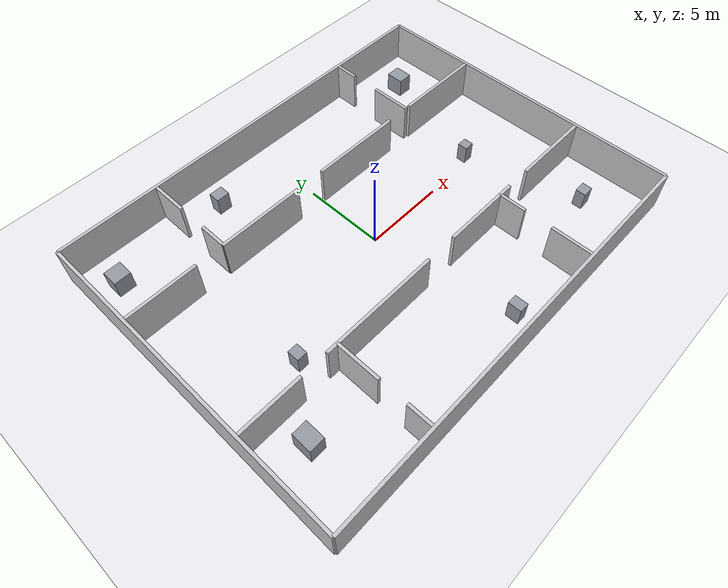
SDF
<?xml version="1.0"?>
<sdf version="1.9"><world name="new_room_world">
<plugin filename="gz-sim-physics-system" name="gz::sim::systems::Physics"/><plugin filename="gz-sim-user-commands-system" name="gz::sim::systems::UserCommands"/><plugin filename="gz-sim-scene-broadcaster-system" name="gz::sim::systems::SceneBroadcaster"/><plugin filename="gz-sim-sensors-system" name="gz::sim::systems::Sensors"><render_engine>ogre2</render_engine></plugin><plugin filename="gz-sim-imu-system" name="gz::sim::systems::Imu"/>
<physics name="new_room_realtime" type="ignored"><max_step_size>0.001</max_step_size><real_time_factor>1</real_time_factor></physics><gravity>0 0 -9.8</gravity><scene><ambient>0.85 0.85 0.87 1</ambient><background>0.68 0.68 0.71 1</background><shadows>false</shadows></scene><light name="sun" type="directional"><cast_shadows>false</cast_shadows><pose>0 0 10 0 0 0</pose><diffuse>0.95 0.95 0.95 1</diffuse><direction>-0.3 0.2 -1</direction></light>
<model name="new_room_ground"><static>true</static><link name="ground_link"><collision name="ground_collision"><geometry><plane><normal>0 0 1</normal><size>40 32</size></plane></geometry></collision><visual name="ground_visual"><geometry><plane><normal>0 0 1</normal><size>40 32</size></plane></geometry><material><ambient>0.92 0.92 0.94 1</ambient><diffuse>0.92 0.92 0.94 1</diffuse></material></visual></link></model>
<model name="mini_hospital_structure"><static>true</static><link name="structure">
<collision name="mx048_c000"><pose>0 10 1.25 0 0 0</pose><geometry><box><size>26 0.18 2.5</size></box></geometry></collision><visual name="mx048_v000"><pose>0 10 1.25 0 0 0</pose><geometry><box><size>26 0.18 2.5</size></box></geometry><material><ambient>0.78 0.78 0.80 1</ambient><diffuse>0.78 0.78 0.80 1</diffuse></material></visual>
<collision name="mx048_c001"><pose>0 -10 1.25 0 0 0</pose><geometry><box><size>26 0.18 2.5</size></box></geometry></collision><visual name="mx048_v001"><pose>0 -10 1.25 0 0 0</pose><geometry><box><size>26 0.18 2.5</size></box></geometry><material><ambient>0.78 0.78 0.80 1</ambient><diffuse>0.78 0.78 0.80 1</diffuse></material></visual>
<collision name="mx048_c002"><pose>-13 0 1.25 0 0 0</pose><geometry><box><size>0.18 20 2.5</size></box></geometry></collision><visual name="mx048_v002"><pose>-13 0 1.25 0 0 0</pose><geometry><box><size>0.18 20 2.5</size></box></geometry><material><ambient>0.78 0.78 0.80 1</ambient><diffuse>0.78 0.78 0.80 1</diffuse></material></visual>
<collision name="mx048_c003"><pose>13 0 1.25 0 0 0</pose><geometry><box><size>0.18 20 2.5</size></box></geometry></collision><visual name="mx048_v003"><pose>13 0 1.25 0 0 0</pose><geometry><box><size>0.18 20 2.5</size></box></geometry><material><ambient>0.78 0.78 0.80 1</ambient><diffuse>0.78 0.78 0.80 1</diffuse></material></visual>
<collision name="mx048_c004"><pose>-10.78 4.2 1.25 0 0 0</pose><geometry><box><size>4.26 0.18 2.5</size></box></geometry></collision><visual name="mx048_v004"><pose>-10.78 4.2 1.25 0 0 0</pose><geometry><box><size>4.26 0.18 2.5</size></box></geometry><material><ambient>0.78 0.78 0.80 1</ambient><diffuse>0.78 0.78 0.80 1</diffuse></material></visual>
<collision name="mx048_c005"><pose>-4.325 4.2 1.25 0 0 0</pose><geometry><box><size>5.25 0.18 2.5</size></box></geometry></collision><visual name="mx048_v005"><pose>-4.325 4.2 1.25 0 0 0</pose><geometry><box><size>5.25 0.18 2.5</size></box></geometry><material><ambient>0.78 0.78 0.80 1</ambient><diffuse>0.78 0.78 0.80 1</diffuse></material></visual>
<collision name="mx048_c006"><pose>2.925 4.2 1.25 0 0 0</pose><geometry><box><size>5.65 0.18 2.5</size></box></geometry></collision><visual name="mx048_v006"><pose>2.925 4.2 1.25 0 0 0</pose><geometry><box><size>5.65 0.18 2.5</size></box></geometry><material><ambient>0.78 0.78 0.80 1</ambient><diffuse>0.78 0.78 0.80 1</diffuse></material></visual>
<collision name="mx048_c007"><pose>10.18 4.2 1.25 0 0 0</pose><geometry><box><size>5.46 0.18 2.5</size></box></geometry></collision><visual name="mx048_v007"><pose>10.18 4.2 1.25 0 0 0</pose><geometry><box><size>5.46 0.18 2.5</size></box></geometry><material><ambient>0.78 0.78 0.80 1</ambient><diffuse>0.78 0.78 0.80 1</diffuse></material></visual>
<collision name="mx048_c008"><pose>-11.055 -4.1 1.25 0 0 0</pose><geometry><box><size>3.71 0.18 2.5</size></box></geometry></collision><visual name="mx048_v008"><pose>-11.055 -4.1 1.25 0 0 0</pose><geometry><box><size>3.71 0.18 2.5</size></box></geometry><material><ambient>0.78 0.78 0.80 1</ambient><diffuse>0.78 0.78 0.80 1</diffuse></material></visual>
<collision name="mx048_c009"><pose>-3.975 -4.1 1.25 0 0 0</pose><geometry><box><size>7.25 0.18 2.5</size></box></geometry></collision><visual name="mx048_v009"><pose>-3.975 -4.1 1.25 0 0 0</pose><geometry><box><size>7.25 0.18 2.5</size></box></geometry><material><ambient>0.78 0.78 0.80 1</ambient><diffuse>0.78 0.78 0.80 1</diffuse></material></visual>
<collision name="mx048_c010"><pose>4 -4.1 1.25 0 0 0</pose><geometry><box><size>4.9 0.18 2.5</size></box></geometry></collision><visual name="mx048_v010"><pose>4 -4.1 1.25 0 0 0</pose><geometry><box><size>4.9 0.18 2.5</size></box></geometry><material><ambient>0.78 0.78 0.80 1</ambient><diffuse>0.78 0.78 0.80 1</diffuse></material></visual>
<collision name="mx048_c011"><pose>10.43 -4.1 1.25 0 0 0</pose><geometry><box><size>4.96 0.18 2.5</size></box></geometry></collision><visual name="mx048_v011"><pose>10.43 -4.1 1.25 0 0 0</pose><geometry><box><size>4.96 0.18 2.5</size></box></geometry><material><ambient>0.78 0.78 0.80 1</ambient><diffuse>0.78 0.78 0.80 1</diffuse></material></visual>
<collision name="mx048_c012"><pose>-6.9 5.05 1.25 0 0 0</pose><geometry><box><size>0.18 1.7 2.5</size></box></geometry></collision><visual name="mx048_v012"><pose>-6.9 5.05 1.25 0 0 0</pose><geometry><box><size>0.18 1.7 2.5</size></box></geometry><material><ambient>0.78 0.78 0.80 1</ambient><diffuse>0.78 0.78 0.80 1</diffuse></material></visual>
<collision name="mx048_c013"><pose>-6.9 8.805 1.25 0 0 0</pose><geometry><box><size>0.18 2.21 2.5</size></box></geometry></collision><visual name="mx048_v013"><pose>-6.9 8.805 1.25 0 0 0</pose><geometry><box><size>0.18 2.21 2.5</size></box></geometry><material><ambient>0.78 0.78 0.80 1</ambient><diffuse>0.78 0.78 0.80 1</diffuse></material></visual>
<collision name="mx048_c014"><pose>7.2 5.45 1.25 0 0 0</pose><geometry><box><size>0.18 2.5 2.5</size></box></geometry></collision><visual name="mx048_v014"><pose>7.2 5.45 1.25 0 0 0</pose><geometry><box><size>0.18 2.5 2.5</size></box></geometry><material><ambient>0.78 0.78 0.80 1</ambient><diffuse>0.78 0.78 0.80 1</diffuse></material></visual>
<collision name="mx048_c015"><pose>7.2 9.205 1.25 0 0 0</pose><geometry><box><size>0.18 1.41 2.5</size></box></geometry></collision><visual name="mx048_v015"><pose>7.2 9.205 1.25 0 0 0</pose><geometry><box><size>0.18 1.41 2.5</size></box></geometry><material><ambient>0.78 0.78 0.80 1</ambient><diffuse>0.78 0.78 0.80 1</diffuse></material></visual>
<collision name="mx048_c016"><pose>-6.9 -9.18 1.25 0 0 0</pose><geometry><box><size>0.18 1.46 2.5</size></box></geometry></collision><visual name="mx048_v016"><pose>-6.9 -9.18 1.25 0 0 0</pose><geometry><box><size>0.18 1.46 2.5</size></box></geometry><material><ambient>0.78 0.78 0.80 1</ambient><diffuse>0.78 0.78 0.80 1</diffuse></material></visual>
<collision name="mx048_c017"><pose>-6.9 -5.425 1.25 0 0 0</pose><geometry><box><size>0.18 2.65 2.5</size></box></geometry></collision><visual name="mx048_v017"><pose>-6.9 -5.425 1.25 0 0 0</pose><geometry><box><size>0.18 2.65 2.5</size></box></geometry><material><ambient>0.78 0.78 0.80 1</ambient><diffuse>0.78 0.78 0.80 1</diffuse></material></visual>
<collision name="mx048_c018"><pose>5.6 -8.68 1.25 0 0 0</pose><geometry><box><size>0.18 2.46 2.5</size></box></geometry></collision><visual name="mx048_v018"><pose>5.6 -8.68 1.25 0 0 0</pose><geometry><box><size>0.18 2.46 2.5</size></box></geometry><material><ambient>0.78 0.78 0.80 1</ambient><diffuse>0.78 0.78 0.80 1</diffuse></material></visual>
<collision name="mx048_c019"><pose>5.6 -4.925 1.25 0 0 0</pose><geometry><box><size>0.18 1.65 2.5</size></box></geometry></collision><visual name="mx048_v019"><pose>5.6 -4.925 1.25 0 0 0</pose><geometry><box><size>0.18 1.65 2.5</size></box></geometry><material><ambient>0.78 0.78 0.80 1</ambient><diffuse>0.78 0.78 0.80 1</diffuse></material></visual>
<collision name="mx048_c020"><pose>-11.4 7.7 0.6 0 0 0</pose><geometry><box><size>1 1 1.2</size></box></geometry></collision><visual name="mx048_v020"><pose>-11.4 7.7 0.6 0 0 0</pose><geometry><box><size>1 1 1.2</size></box></geometry><material><ambient>0.58 0.60 0.64 1</ambient><diffuse>0.58 0.60 0.64 1</diffuse></material></visual>
<collision name="mx048_c021"><pose>-4.3 8.1 0.6 0 0 0</pose><geometry><box><size>0.8 0.7 1.2</size></box></geometry></collision><visual name="mx048_v021"><pose>-4.3 8.1 0.6 0 0 0</pose><geometry><box><size>0.8 0.7 1.2</size></box></geometry><material><ambient>0.58 0.60 0.64 1</ambient><diffuse>0.58 0.60 0.64 1</diffuse></material></visual>
<collision name="mx048_c022"><pose>10.4 7.6 0.6 0 0 0</pose><geometry><box><size>0.9 1.1 1.2</size></box></geometry></collision><visual name="mx048_v022"><pose>10.4 7.6 0.6 0 0 0</pose><geometry><box><size>0.9 1.1 1.2</size></box></geometry><material><ambient>0.58 0.60 0.64 1</ambient><diffuse>0.58 0.60 0.64 1</diffuse></material></visual>
<collision name="mx048_c023"><pose>-10.6 -5.9 0.6 0 0 0</pose><geometry><box><size>0.9 1.2 1.2</size></box></geometry></collision><visual name="mx048_v023"><pose>-10.6 -5.9 0.6 0 0 0</pose><geometry><box><size>0.9 1.2 1.2</size></box></geometry><material><ambient>0.58 0.60 0.64 1</ambient><diffuse>0.58 0.60 0.64 1</diffuse></material></visual>
<collision name="mx048_c024"><pose>1.4 -8.6 0.6 0 0 0</pose><geometry><box><size>0.6 0.8 1.2</size></box></geometry></collision><visual name="mx048_v024"><pose>1.4 -8.6 0.6 0 0 0</pose><geometry><box><size>0.6 0.8 1.2</size></box></geometry><material><ambient>0.58 0.60 0.64 1</ambient><diffuse>0.58 0.60 0.64 1</diffuse></material></visual>
<collision name="mx048_c025"><pose>10.2 -6.8 0.6 0 0 0</pose><geometry><box><size>0.7 0.6 1.2</size></box></geometry></collision><visual name="mx048_v025"><pose>10.2 -6.8 0.6 0 0 0</pose><geometry><box><size>0.7 0.6 1.2</size></box></geometry><material><ambient>0.58 0.60 0.64 1</ambient><diffuse>0.58 0.60 0.64 1</diffuse></material></visual>
<collision name="mx048_c026"><pose>-8.1 -2.5 0.6 0 0 0</pose><geometry><box><size>0.6 0.7 1.2</size></box></geometry></collision><visual name="mx048_v026"><pose>-8.1 -2.5 0.6 0 0 0</pose><geometry><box><size>0.6 0.7 1.2</size></box></geometry><material><ambient>0.58 0.60 0.64 1</ambient><diffuse>0.58 0.60 0.64 1</diffuse></material></visual>
<collision name="mx048_c027"><pose>8.4 0.4 0.6 0 0 0</pose><geometry><box><size>0.6 0.6 1.2</size></box></geometry></collision><visual name="mx048_v027"><pose>8.4 0.4 0.6 0 0 0</pose><geometry><box><size>0.6 0.6 1.2</size></box></geometry><material><ambient>0.58 0.60 0.64 1</ambient><diffuse>0.58 0.60 0.64 1</diffuse></material></visual>
</link></model></world></sdf>
